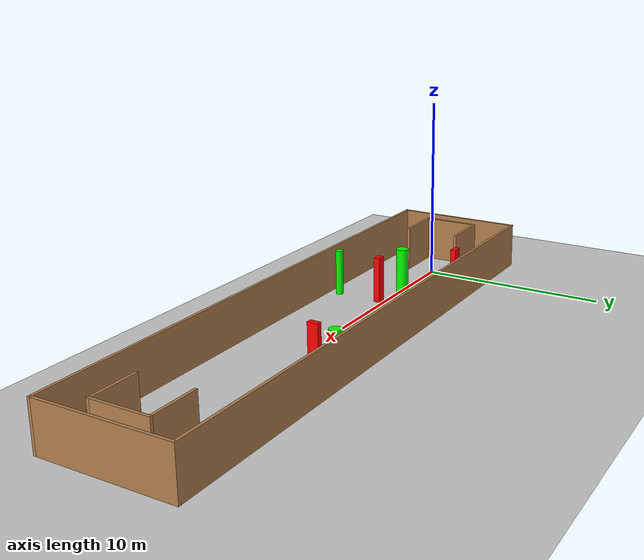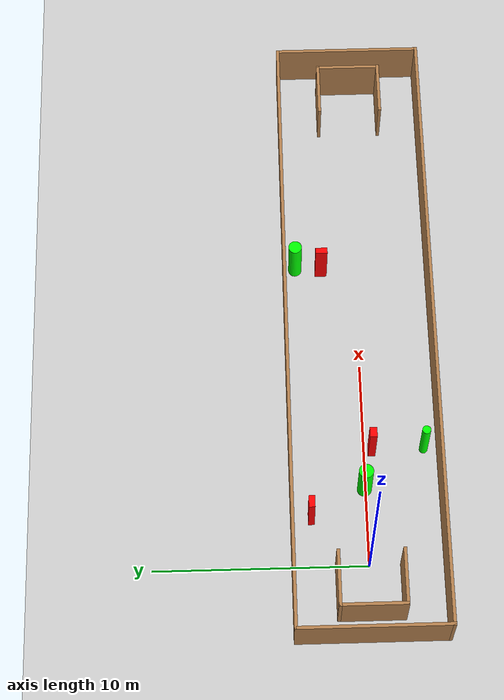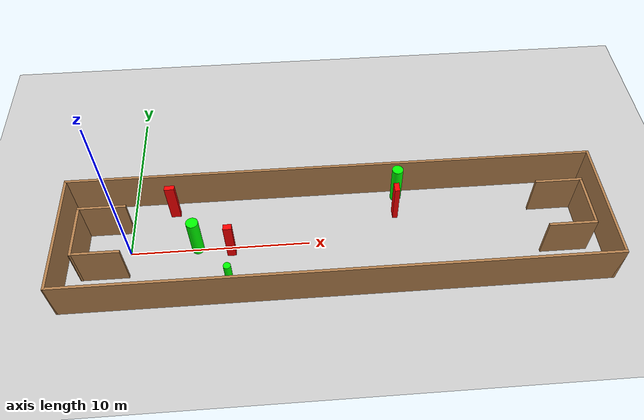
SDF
<sdf version="1.7">
 <world name="default">
  <light name="sun" type="directional">
   <pose>0 0 10 0 -0 0</pose>
   <diffuse>0.8 0.8 0.8 1</diffuse>
   <specular>0.2 0.2 0.2 1</specular>
   <attenuation>
    <range>1000</range>
    <constant>0.9</constant>
    <linear>0.01</linear>
    <quadratic>0.001</quadratic>
   </attenuation>
   <direction>-0.5 0.1 -0.9</direction>
   <spot><inner_angle>0</inner_angle><outer_angle>0</outer_angle><falloff>0</falloff></spot>
  </light>
  <model name="ground_plane">
   <static>1</static>
   <link name="link">
    <collision name="collision">
     <geometry><plane><normal>0 0 1</normal><size>100 100</size></plane></geometry>
     <surface>
      <contact><collide_bitmask>65535</collide_bitmask></contact>
      <friction><ode><mu>100</mu><mu2>50</mu2></ode></friction>
     </surface>
    </collision>
    <visual name="visual">
     <cast_shadows>0</cast_shadows>
     <geometry><plane><normal>0 0 1</normal><size>100 100</size></plane></geometry>
     <material>
      <script><uri>file://media/materials/scripts/gazebo.material</uri><name>Gazebo/Grey</name></script>
     </material>
    </visual>
   </link>
  </model>
  <gravity>0 0 -9.8</gravity>
  <magnetic_field>6e-06 2.3e-05 -4.2e-05</magnetic_field>
  <atmosphere type="adiabatic"/>
  <physics type="ode">
   <max_step_size>0.001</max_step_size>
   <real_time_factor>1</real_time_factor>
   <real_time_update_rate>1000</real_time_update_rate>
  </physics>
  <scene><ambient>0.4 0.4 0.4 1</ambient><background>0.7 0.7 0.7 1</background><shadows>1</shadows></scene>
  <spherical_coordinates>
   <surface_model>EARTH_WGS84</surface_model>
   <latitude_deg>0</latitude_deg>
   <longitude_deg>0</longitude_deg>
   <elevation>0</elevation>
   <heading_deg>0</heading_deg>
  </spherical_coordinates>
  <model name="my_base_walls">
   <link name="Wall_0">
    <collision name="Wall_0_Collision">
     <geometry><box><size>7.15 0.15 2.5</size></box></geometry>
     <pose>0 0 1.25 0 -0 0</pose>
    </collision>
    <visual name="Wall_0_Visual">
     <pose>0 0 1.25 0 -0 0</pose>
     <geometry><box><size>7.15 0.15 2.5</size></box></geometry>
     <material>
      <script><uri>file://media/materials/scripts/gazebo.material</uri><name>Gazebo/Wood</name></script>
      <ambient>1 1 1 1</ambient>
     </material>
     <meta><layer>0</layer></meta>
    </visual>
    <pose>-15 0 0 0 -0 1.5708</pose>
   </link>
   <link name="Wall_10">
    <collision name="Wall_10_Collision">
     <geometry><box><size>2.65 0.15 2.5</size></box></geometry>
     <pose>0 0 1.25 0 -0 0</pose>
    </collision>
    <visual name="Wall_10_Visual">
     <pose>0 0 1.25 0 -0 0</pose>
     <geometry><box><size>2.65 0.15 2.5</size></box></geometry>
     <material>
      <script><uri>file://media/materials/scripts/gazebo.material</uri><name>Gazebo/Wood</name></script>
      <ambient>1 1 1 1</ambient>
     </material>
     <meta><layer>0</layer></meta>
    </visual>
    <pose>-12.75 -1.5 0 0 -0 0</pose>
   </link>
   <link name="Wall_12">
    <collision name="Wall_12_Collision">
     <geometry><box><size>2.65 0.15 2.5</size></box></geometry>
     <pose>0 0 1.25 0 -0 0</pose>
    </collision>
    <visual name="Wall_12_Visual">
     <pose>0 0 1.25 0 -0 0</pose>
     <geometry><box><size>2.65 0.15 2.5</size></box></geometry>
     <material>
      <script><uri>file://media/materials/scripts/gazebo.material</uri><name>Gazebo/Wood</name></script>
      <ambient>1 1 1 1</ambient>
     </material>
     <meta><layer>0</layer></meta>
    </visual>
    <pose>-12.75 1.5 0 0 -0 0</pose>
   </link>
   <link name="Wall_14">
    <collision name="Wall_14_Collision">
     <geometry><box><size>3.15 0.15 2.5</size></box></geometry>
     <pose>0 0 1.25 0 -0 0</pose>
    </collision>
    <visual name="Wall_14_Visual">
     <pose>0 0 1.25 0 -0 0</pose>
     <geometry><box><size>3.15 0.15 2.5</size></box></geometry>
     <material>
      <script><uri>file://media/materials/scripts/gazebo.material</uri><name>Gazebo/Wood</name></script>
      <ambient>1 1 1 1</ambient>
     </material>
     <meta><layer>0</layer></meta>
    </visual>
    <pose>14 0 0 0 -0 -1.5708</pose>
   </link>
   <link name="Wall_15">
    <collision name="Wall_15_Collision">
     <geometry><box><size>2.65 0.15 2.5</size></box></geometry>
     <pose>0 0 1.25 0 -0 0</pose>
    </collision>
    <visual name="Wall_15_Visual">
     <pose>0 0 1.25 0 -0 0</pose>
     <geometry><box><size>2.65 0.15 2.5</size></box></geometry>
     <material>
      <script><uri>file://media/materials/scripts/gazebo.material</uri><name>Gazebo/Wood</name></script>
      <ambient>1 1 1 1</ambient>
     </material>
     <meta><layer>0</layer></meta>
    </visual>
    <pose>12.75 -1.5 0 0 -0 3.14159</pose>
   </link>
   <link name="Wall_17">
    <collision name="Wall_17_Collision">
     <geometry><box><size>2.65 0.15 2.5</size></box></geometry>
     <pose>0 0 1.25 0 -0 0</pose>
    </collision>
    <visual name="Wall_17_Visual">
     <pose>0 0 1.25 0 -0 0</pose>
     <geometry><box><size>2.65 0.15 2.5</size></box></geometry>
     <material>
      <script><uri>file://media/materials/scripts/gazebo.material</uri><name>Gazebo/Wood</name></script>
      <ambient>1 1 1 1</ambient>
     </material>
     <meta><layer>0</layer></meta>
    </visual>
    <pose>12.75 1.5 0 0 -0 3.14159</pose>
   </link>
   <link name="Wall_2">
    <collision name="Wall_2_Collision">
     <geometry><box><size>30.15 0.15 2.5</size></box></geometry>
     <pose>0 0 1.25 0 -0 0</pose>
    </collision>
    <visual name="Wall_2_Visual">
     <pose>0 0 1.25 0 -0 0</pose>
     <geometry><box><size>30.15 0.15 2.5</size></box></geometry>
     <material>
      <script><uri>file://media/materials/scripts/gazebo.material</uri><name>Gazebo/Wood</name></script>
      <ambient>1 1 1 1</ambient>
     </material>
     <meta><layer>0</layer></meta>
    </visual>
    <pose>-0 -3.5 0 0 -0 0</pose>
   </link>
   <link name="Wall_4">
    <collision name="Wall_4_Collision">
     <geometry><box><size>30.15 0.15 2.5</size></box></geometry>
     <pose>0 0 1.25 0 -0 0</pose>
    </collision>
    <visual name="Wall_4_Visual">
     <pose>0 0 1.25 0 -0 0</pose>
     <geometry><box><size>30.15 0.15 2.5</size></box></geometry>
     <material>
      <script><uri>file://media/materials/scripts/gazebo.material</uri><name>Gazebo/Wood</name></script>
      <ambient>1 1 1 1</ambient>
     </material>
     <meta><layer>0</layer></meta>
    </visual>
    <pose>-0 3.5 0 0 -0 0</pose>
   </link>
   <link name="Wall_6">
    <collision name="Wall_6_Collision">
     <geometry><box><size>7.15 0.15 2.5</size></box></geometry>
     <pose>0 0 1.25 0 -0 0</pose>
    </collision>
    <visual name="Wall_6_Visual">
     <pose>0 0 1.25 0 -0 0</pose>
     <geometry><box><size>7.15 0.15 2.5</size></box></geometry>
     <material>
      <script><uri>file://media/materials/scripts/gazebo.material</uri><name>Gazebo/Wood</name></script>
      <ambient>1 1 1 1</ambient>
     </material>
     <meta><layer>0</layer></meta>
    </visual>
    <pose>15 0 0 0 -0 -1.5708</pose>
   </link>
   <link name="Wall_9">
    <collision name="Wall_9_Collision">
     <geometry><box><size>3.15 0.15 2.5</size></box></geometry>
     <pose>0 0 1.25 0 -0 0</pose>
    </collision>
    <visual name="Wall_9_Visual">
     <pose>0 0 1.25 0 -0 0</pose>
     <geometry><box><size>3.15 0.15 2.5</size></box></geometry>
     <material>
      <script><uri>file://media/materials/scripts/gazebo.material</uri><name>Gazebo/Wood</name></script>
      <ambient>1 1 1 1</ambient>
     </material>
     <meta><layer>0</layer></meta>
    </visual>
    <pose>-14 0 0 0 -0 -1.5708</pose>
   </link>
   <static>1</static>
   <pose>11.5 0 0 0 -0 0</pose>
  </model>
  <model name="cylinder1">
   <static>1</static>
   <link name="link">
    <inertial>
     <mass>1</mass>
     <inertia><ixx>0.5</ixx><ixy>0</ixy><ixz>0</ixz><iyy>0.5</iyy><iyz>0</iyz><izz>1</izz></inertia>
    </inertial>
    <collision name="collision">
     <geometry><cylinder><radius>0.31726956239030807</radius><length>2.5</length></cylinder></geometry>
    </collision>
    <visual name="visual">
     <geometry><cylinder><radius>0.31726956239030807</radius><length>2.5</length></cylinder></geometry>
     <material>
      <ambient>0 1 0 1</ambient>
      <diffuse>0 1 0 1</diffuse>
      <specular>0.1 0.1 0.1 1</specular>
      <emissive>0 0 0 0</emissive>
     </material>
    </visual>
   </link>
   <pose>15.29876423711357 2.956055762800772 1.25 0 0 0</pose>
  </model>
  <model name="cylinder2">
   <static>1</static>
   <link name="link">
    <inertial>
     <mass>1</mass>
     <inertia><ixx>0.5</ixx><ixy>0</ixy><ixz>0</ixz><iyy>0.5</iyy><iyz>0</iyz><izz>1</izz></inertia>
    </inertial>
    <collision name="collision">
     <geometry><cylinder><radius>0.19956316452445103</radius><length>2.5</length></cylinder></geometry>
    </collision>
    <visual name="visual">
     <geometry><cylinder><radius>0.19956316452445103</radius><length>2.5</length></cylinder></geometry>
     <material>
      <ambient>0 1 0 1</ambient>
      <diffuse>0 1 0 1</diffuse>
      <specular>0.1 0.1 0.1 1</specular>
      <emissive>0 0 0 0</emissive>
     </material>
    </visual>
   </link>
   <pose>5.682512432520557 -2.8132255275043816 1.25 0 0 0</pose>
  </model>
  <model name="cylinder3">
   <static>1</static>
   <link name="link">
    <inertial>
     <mass>1</mass>
     <inertia><ixx>0.5</ixx><ixy>0</ixy><ixz>0</ixz><iyy>0.5</iyy><iyz>0</iyz><izz>1</izz></inertia>
    </inertial>
    <collision name="collision">
     <geometry><cylinder><radius>0.33941070706118537</radius><length>2.5</length></cylinder></geometry>
    </collision>
    <visual name="visual">
     <geometry><cylinder><radius>0.33941070706118537</radius><length>2.5</length></cylinder></geometry>
     <material>
      <ambient>0 1 0 1</ambient>
      <diffuse>0 1 0 1</diffuse>
      <specular>0.1 0.1 0.1 1</specular>
      <emissive>0 0 0 0</emissive>
     </material>
    </visual>
   </link>
   <pose>3.7401427123561852 0.057304786856526846 1.25 0 0 0</pose>
  </model>
  <model name="box1">
   <static>1</static>
   <link name="link">
    <inertial>
     <mass>1</mass>
     <inertia><ixx>0.083</ixx><ixy>0</ixy><ixz>0</ixz><iyy>0.083</iyy><iyz>0</iyz><izz>0.083</izz></inertia>
    </inertial>
    <collision name="collision">
     <geometry><box><size>0.29105876592009616 0.5711075448174929 2.5</size></box></geometry>
    </collision>
    <visual name="visual">
     <geometry><box><size>0.29105876592009616 0.5711075448174929 2.5</size></box></geometry>
     <material>
      <ambient>1 0 0 1</ambient>
      <diffuse>1 0 0 1</diffuse>
      <specular>0.1 0.1 0.1 1</specular>
      <emissive>0 0 0 0</emissive>
     </material>
    </visual>
    <sensor name="my_contact" type="contact">
     <contact><collision>box_collision</collision><topic>__default_topic__</topic></contact>
    </sensor>
   </link>
   <pose>15.087265579183875 1.6977399422329933 1.25 0 0 0</pose>
  </model>
  <model name="box2">
   <static>1</static>
   <link name="link">
    <inertial>
     <mass>1</mass>
     <inertia><ixx>0.083</ixx><ixy>0</ixy><ixz>0</ixz><iyy>0.083</iyy><iyz>0</iyz><izz>0.083</izz></inertia>
    </inertial>
    <collision name="collision">
     <geometry><box><size>0.5532043015181611 0.2882665454175949 2.5</size></box></geometry>
    </collision>
    <visual name="visual">
     <geometry><box><size>0.5532043015181611 0.2882665454175949 2.5</size></box></geometry>
     <material>
      <ambient>1 0 0 1</ambient>
      <diffuse>1 0 0 1</diffuse>
      <specular>0.1 0.1 0.1 1</specular>
      <emissive>0 0 0 0</emissive>
     </material>
    </visual>
    <sensor name="my_contact" type="contact">
     <contact><collision>box_collision</collision><topic>__default_topic__</topic></contact>
    </sensor>
   </link>
   <pose>2.3519089505983732 2.596446809965654 1.25 0 0 0</pose>
  </model>
  <model name="box3">
   <static>1</static>
   <link name="link">
    <inertial>
     <mass>1</mass>
     <inertia><ixx>0.083</ixx><ixy>0</ixy><ixz>0</ixz><iyy>0.083</iyy><iyz>0</iyz><izz>0.083</izz></inertia>
    </inertial>
    <collision name="collision">
     <geometry><box><size>0.4749704304661885 0.33690247274547275 2.5</size></box></geometry>
    </collision>
    <visual name="visual">
     <geometry><box><size>0.4749704304661885 0.33690247274547275 2.5</size></box></geometry>
     <material>
      <ambient>1 0 0 1</ambient>
      <diffuse>1 0 0 1</diffuse>
      <specular>0.1 0.1 0.1 1</specular>
      <emissive>0 0 0 0</emissive>
     </material>
    </visual>
    <sensor name="my_contact" type="contact">
     <contact><collision>box_collision</collision><topic>__default_topic__</topic></contact>
    </sensor>
   </link>
   <pose>5.64024874324943 -0.35782269603212846 1.25 0 0 0</pose>
  </model>
 </world>
</sdf>
